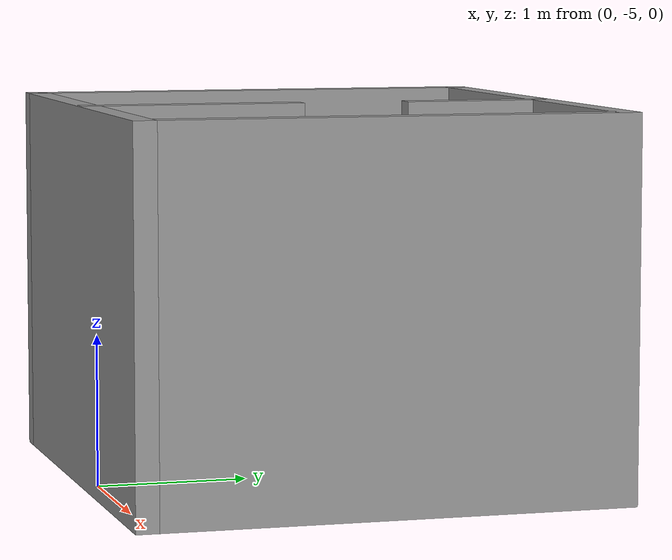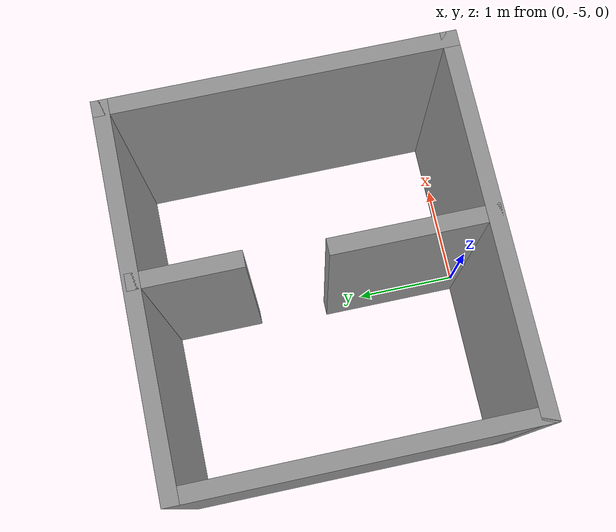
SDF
<?xml version='1.0'?>
<sdf version='1.6'>
  <model name='labirent'>
    <pose frame=''>-0.095 -3.49 0 0 -0 0</pose>
    <link name='Wall_0'>
      <collision name='Wall_0_Collision'>
        <geometry>
          <box>
            <size>3.5 0.15 2.5</size>
          </box>
        </geometry>
        <pose frame=''>0 0 1.25 0 -0 0</pose>
      </collision>
      <visual name='Wall_0_Visual'>
        <pose frame=''>0 0 1.25 0 -0 0</pose>
        <geometry>
          <box>
            <size>3.5 0.15 2.5</size>
          </box>
        </geometry>
        <material>
          <script>
            <uri>file://media/materials/scripts/gazebo.material</uri>
            <name>Gazebo/Grey</name>
          </script>
          <ambient>1 1 1 1</ambient>
        </material>
        <meta>
          <layer>0</layer>
        </meta>
      </visual>
      <pose frame=''>-0 1.55 0 0 -0 0</pose>
    </link>
    <link name='Wall_1'>
      <collision name='Wall_1_Collision'>
        <geometry>
          <box>
            <size>3.25 0.15 2.5</size>
          </box>
        </geometry>
        <pose frame=''>0 0 1.25 0 -0 0</pose>
      </collision>
      <visual name='Wall_1_Visual'>
        <pose frame=''>0 0 1.25 0 -0 0</pose>
        <geometry>
          <box>
            <size>3.25 0.15 2.5</size>
          </box>
        </geometry>
        <material>
          <script>
            <uri>file://media/materials/scripts/gazebo.material</uri>
            <name>Gazebo/Grey</name>
          </script>
          <ambient>1 1 1 1</ambient>
        </material>
        <meta>
          <layer>0</layer>
        </meta>
      </visual>
      <pose frame=''>1.675 0 0 0 -0 -1.5708</pose>
    </link>
    <link name='Wall_2'>
      <collision name='Wall_2_Collision'>
        <geometry>
          <box>
            <size>3.5 0.15 2.5</size>
          </box>
        </geometry>
        <pose frame=''>0 0 1.25 0 -0 0</pose>
      </collision>
      <visual name='Wall_2_Visual'>
        <pose frame=''>0 0 1.25 0 -0 0</pose>
        <geometry>
          <box>
            <size>3.5 0.15 2.5</size>
          </box>
        </geometry>
        <material>
          <script>
            <uri>file://media/materials/scripts/gazebo.material</uri>
            <name>Gazebo/Grey</name>
          </script>
          <ambient>1 1 1 1</ambient>
        </material>
        <meta>
          <layer>0</layer>
        </meta>
      </visual>
      <pose frame=''>-0 -1.55 0 0 -0 3.14159</pose>
    </link>
    <link name='Wall_3'>
      <collision name='Wall_3_Collision'>
        <geometry>
          <box>
            <size>3.25 0.15 2.5</size>
          </box>
        </geometry>
        <pose frame=''>0 0 1.25 0 -0 0</pose>
      </collision>
      <visual name='Wall_3_Visual'>
        <pose frame=''>0 0 1.25 0 -0 0</pose>
        <geometry>
          <box>
            <size>3.25 0.15 2.5</size>
          </box>
        </geometry>
        <material>
          <script>
            <uri>file://media/materials/scripts/gazebo.material</uri>
            <name>Gazebo/Grey</name>
          </script>
          <ambient>1 1 1 1</ambient>
        </material>
        <meta>
          <layer>0</layer>
        </meta>
      </visual>
      <pose frame=''>-1.675 0 0 0 -0 1.5708</pose>
    </link>
    <link name='Wall_5'>
      <collision name='Wall_5_Collision'>
        <geometry>
          <box>
            <size>1 0.15 2.5</size>
          </box>
        </geometry>
        <pose frame=''>0 0 1.25 0 -0 0</pose>
      </collision>
      <visual name='Wall_5_Visual'>
        <pose frame=''>0 0 1.25 0 -0 0</pose>
        <geometry>
          <box>
            <size>1 0.15 2.5</size>
          </box>
        </geometry>
        <material>
          <script>
            <uri>file://media/materials/scripts/gazebo.material</uri>
            <name>Gazebo/Grey</name>
          </script>
          <ambient>1 1 1 1</ambient>
        </material>
        <meta>
          <layer>0</layer>
        </meta>
      </visual>
      <pose frame=''>0.105 1.095 0 0 -0 -1.5708</pose>
    </link>
    <link name='Wall_7'>
      <collision name='Wall_7_Collision'>
        <geometry>
          <box>
            <size>1.5 0.15 2.5</size>
          </box>
        </geometry>
        <pose frame=''>0 0 1.25 0 -0 0</pose>
      </collision>
      <visual name='Wall_7_Visual'>
        <pose frame=''>0 0 1.25 0 -0 0</pose>
        <geometry>
          <box>
            <size>1.5 0.15 2.5</size>
          </box>
        </geometry>
        <material>
          <script>
            <uri>file://media/materials/scripts/gazebo.material</uri>
            <name>Gazebo/Grey</name>
          </script>
          <ambient>1 1 1 1</ambient>
        </material>
        <meta>
          <layer>0</layer>
        </meta>
      </visual>
      <pose frame=''>0.055 -0.855 0 0 -0 1.5708</pose>
    </link>
    <static>1</static>
  </model>
</sdf>
